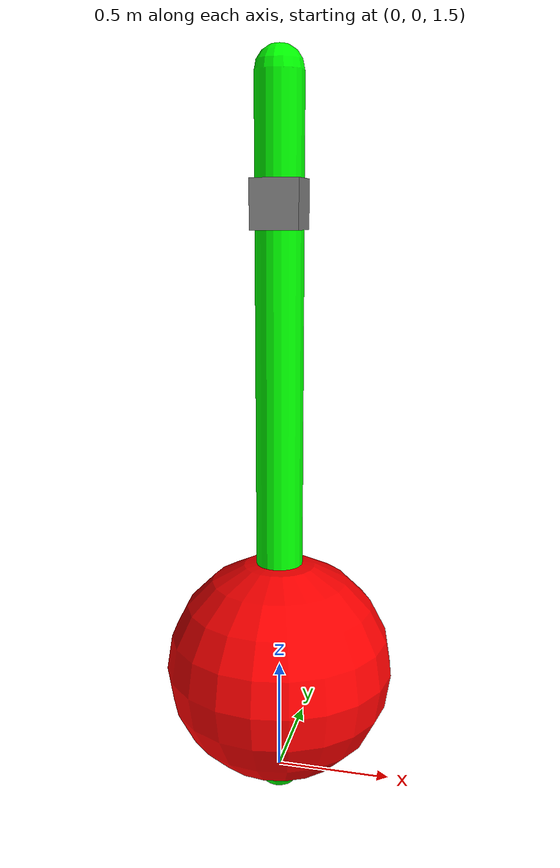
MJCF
<mujoco>
  <option gravity="0 0 -9.81" />
  <worldbody>
    <light diffuse="0.5 0.5 0.5" pos="0 0 3" dir="0 0 -1" />
    <body name="object_1" pos="0 0 2">
      <geom type="sphere" size="0.5" density="5" rgba="1 0 0 1" />
      <joint name="object_1_joint" type="slide" axis="0 0 1" />
      <site name="object_1_site" pos="0 0 0" size="0.01" />
    </body>
    <body name="object_2" pos="0 0 3">
      <geom type="capsule" size="0.1 1.5" rgba="0 1 0 1" />
      <site name="object_2_site" pos="0 0 0" size="0.01" />
    </body>
    <body name="object_3" pos="0 0 4">
      <geom type="box" size="0.1 0.1 0.1" rgba="0.5 0.5 0.5 1" />
    </body>
  </worldbody>
  <tendon>
    <spatial name="spring" width="0.01" stiffness="50" damping="1.0">
      <site site="object_2_site" />
      <site site="object_1_site" />
    </spatial>
  </tendon>
<joint name="joint_object_1_object_2" type="revolute" body1="object_1" body2="object_2" /></mujoco>
